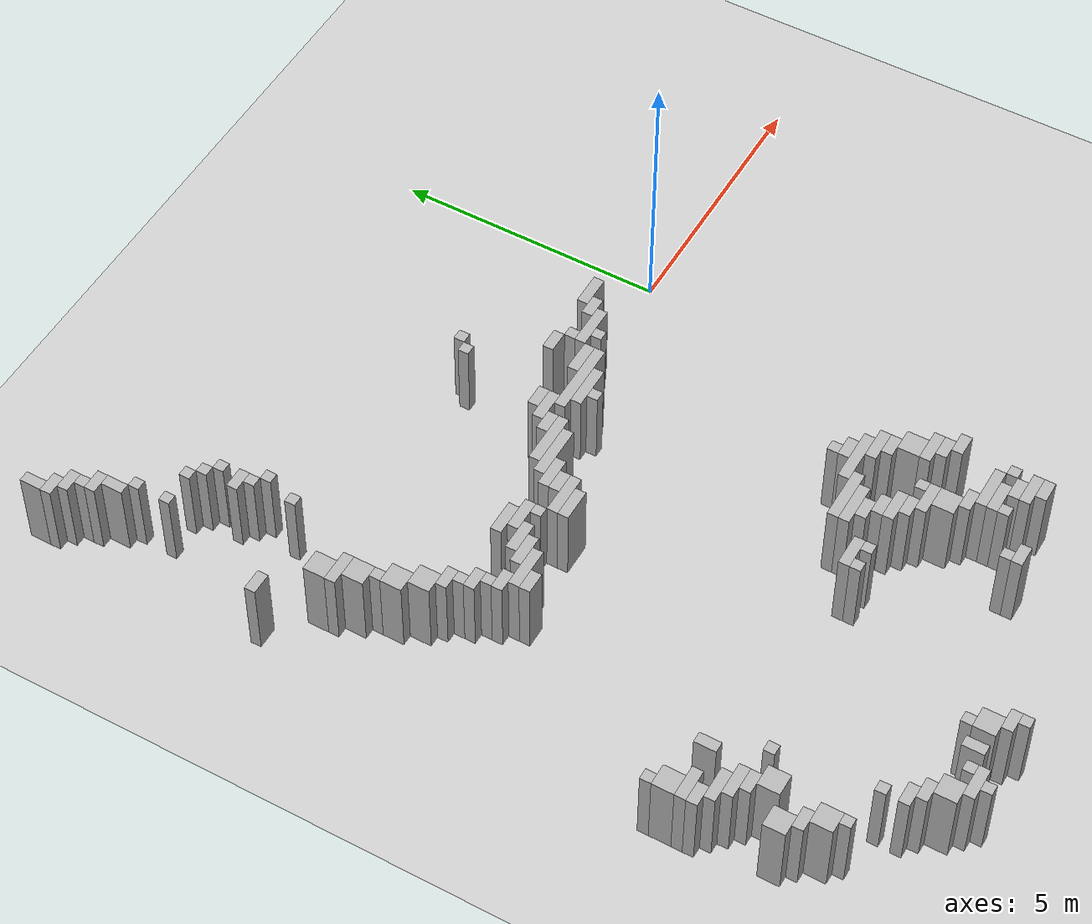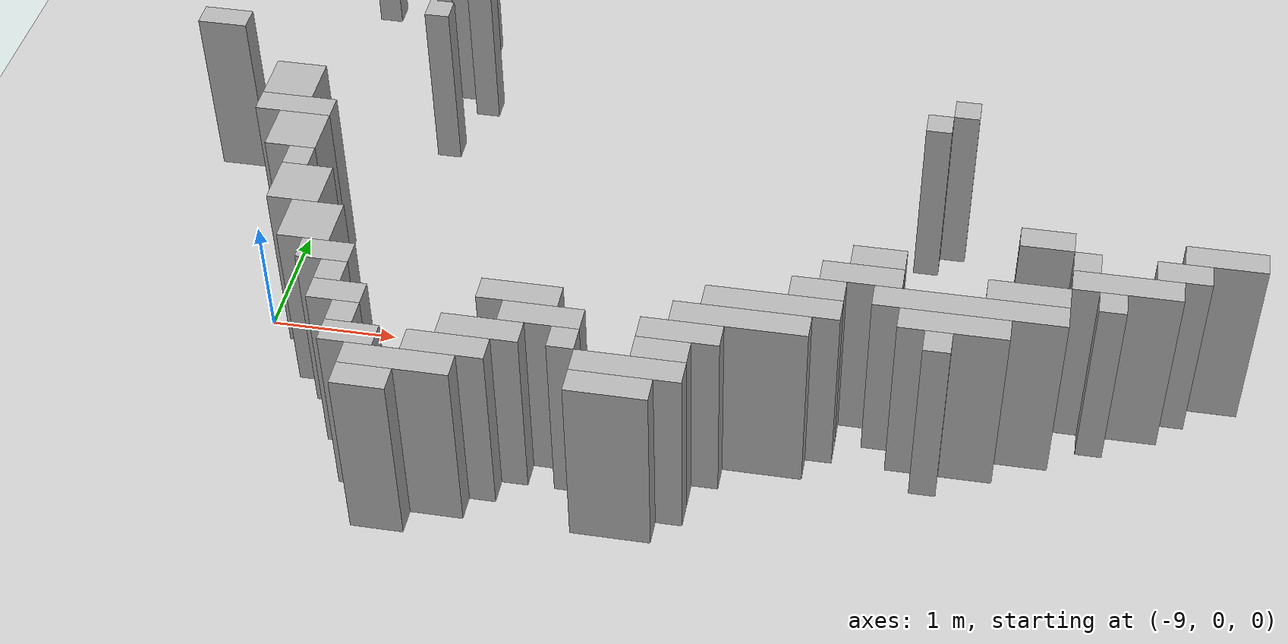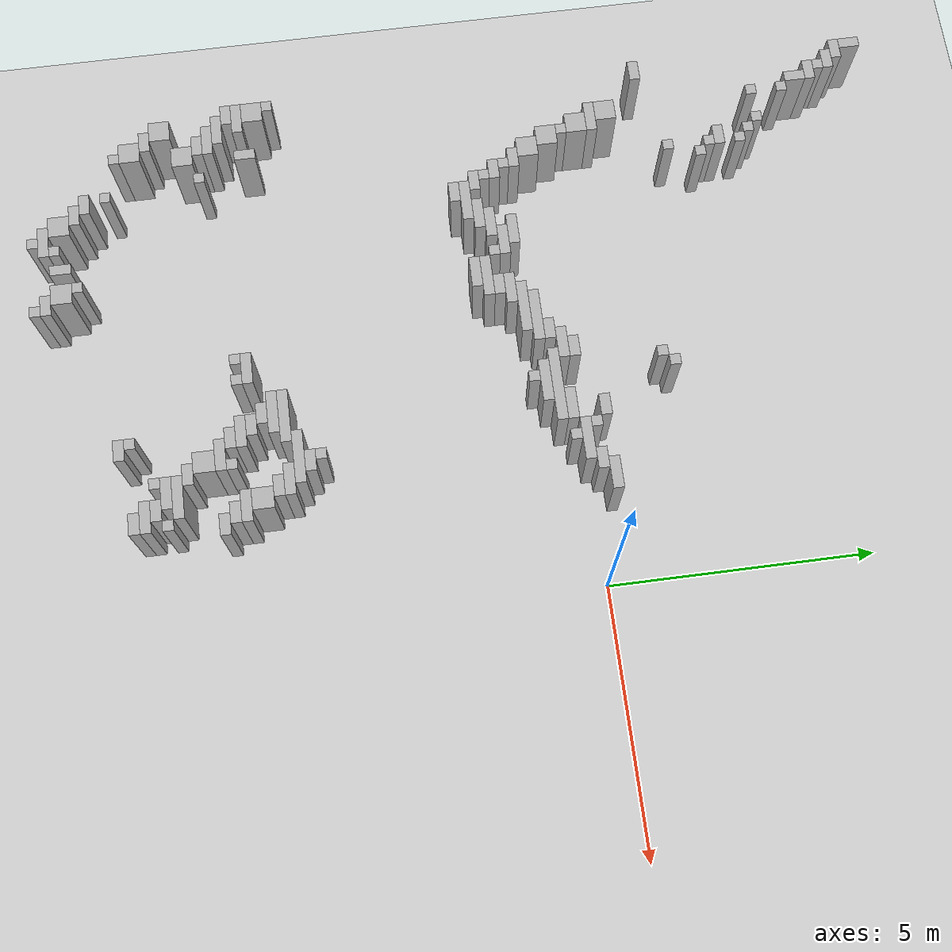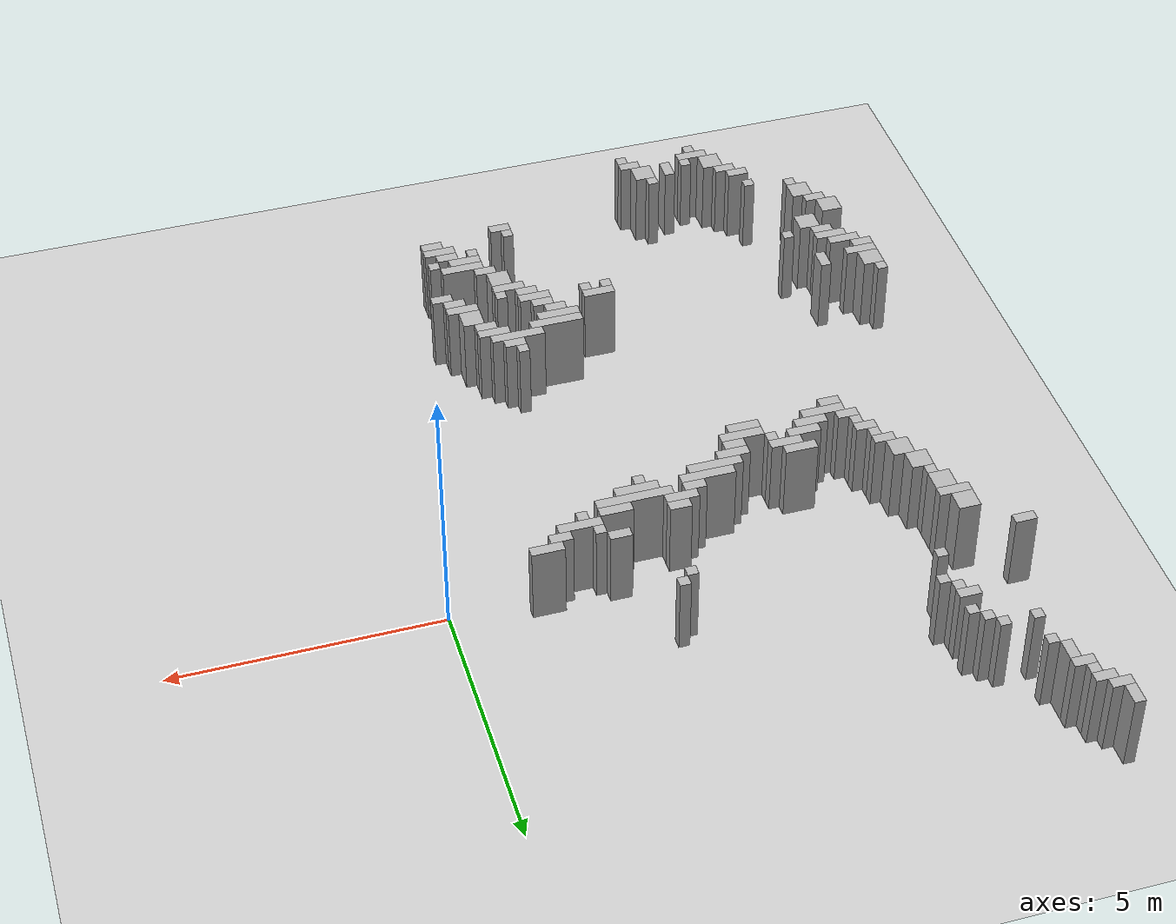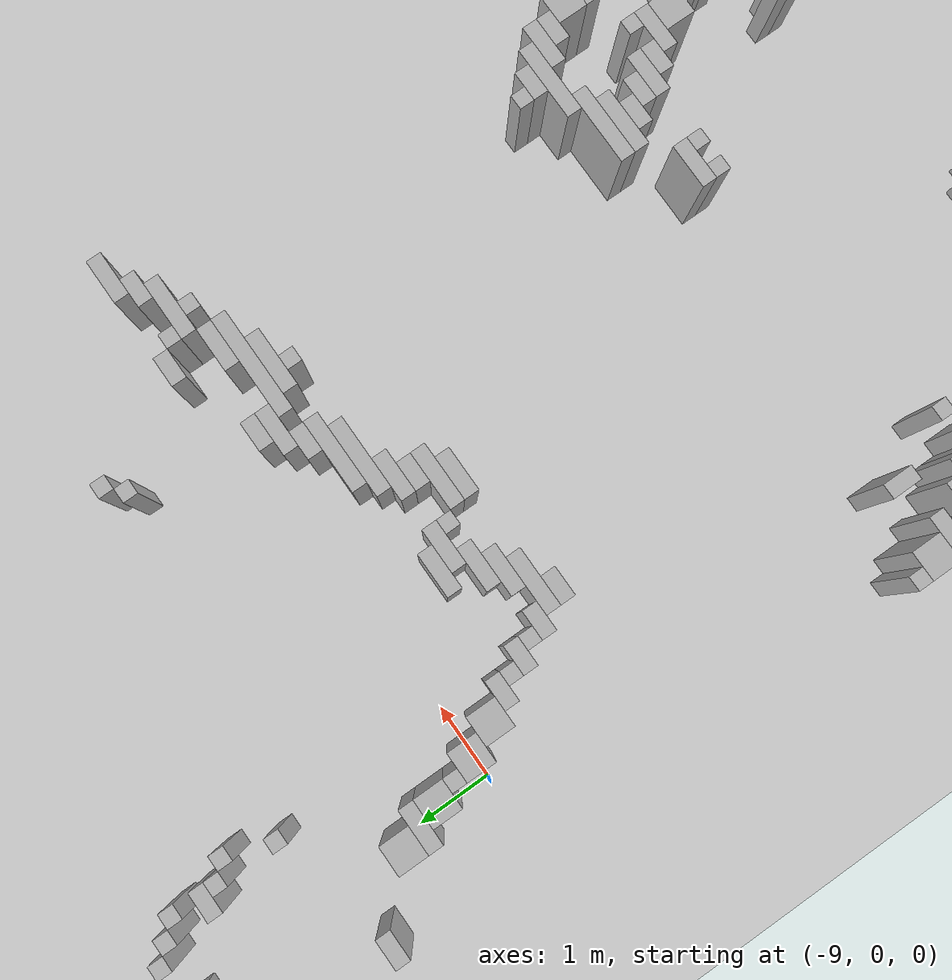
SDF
<sdf version="1.6">
 <world name="real_map">
  <include><uri>model://sun</uri></include>
  <include><uri>model://ground_plane</uri></include>
  <model name="w2">
   <static>true</static>
   <pose>-9.10 4.70 0.8 0 0 0</pose>
   <link name="l">
    <collision name="c"><geometry><box><size>0.20 0.20 1.5</size></box></geometry></collision>
    <visual name="v">
     <geometry><box><size>0.20 0.20 1.5</size></box></geometry>
     <material><ambient>0.7 0.7 0.7 1</ambient></material>
    </visual>
   </link>
  </model>
  <model name="w3">
   <static>true</static>
   <pose>-8.10 3.70 0.8 0 0 0</pose>
   <link name="l">
    <collision name="c"><geometry><box><size>0.20 0.20 1.5</size></box></geometry></collision>
    <visual name="v">
     <geometry><box><size>0.20 0.20 1.5</size></box></geometry>
     <material><ambient>0.7 0.7 0.7 1</ambient></material>
    </visual>
   </link>
  </model>
  <model name="w5">
   <static>true</static>
   <pose>-8.10 3.10 0.8 0 0 0</pose>
   <link name="l">
    <collision name="c"><geometry><box><size>0.20 0.20 1.5</size></box></geometry></collision>
    <visual name="v">
     <geometry><box><size>0.20 0.20 1.5</size></box></geometry>
     <material><ambient>0.7 0.7 0.7 1</ambient></material>
    </visual>
   </link>
  </model>
  <model name="w7">
   <static>true</static>
   <pose>-9.80 5.90 0.8 0 0 0</pose>
   <link name="l">
    <collision name="c"><geometry><box><size>0.40 0.20 1.5</size></box></geometry></collision>
    <visual name="v">
     <geometry><box><size>0.40 0.20 1.5</size></box></geometry>
     <material><ambient>0.7 0.7 0.7 1</ambient></material>
    </visual>
   </link>
  </model>
  <model name="w14">
   <static>true</static>
   <pose>-8.20 3.30 0.8 0 0 0</pose>
   <link name="l">
    <collision name="c"><geometry><box><size>0.40 0.20 1.5</size></box></geometry></collision>
    <visual name="v">
     <geometry><box><size>0.40 0.20 1.5</size></box></geometry>
     <material><ambient>0.7 0.7 0.7 1</ambient></material>
    </visual>
   </link>
  </model>
  <model name="w16">
   <static>true</static>
   <pose>-8.10 2.30 0.8 0 0 0</pose>
   <link name="l">
    <collision name="c"><geometry><box><size>0.20 0.20 1.5</size></box></geometry></collision>
    <visual name="v">
     <geometry><box><size>0.20 0.20 1.5</size></box></geometry>
     <material><ambient>0.7 0.7 0.7 1</ambient></material>
    </visual>
   </link>
  </model>
  <model name="w17">
   <static>true</static>
   <pose>-3.70 1.70 0.8 0 0 0</pose>
   <link name="l">
    <collision name="c"><geometry><box><size>0.20 0.20 1.5</size></box></geometry></collision>
    <visual name="v">
     <geometry><box><size>0.20 0.20 1.5</size></box></geometry>
     <material><ambient>0.7 0.7 0.7 1</ambient></material>
    </visual>
   </link>
  </model>
  <model name="w20">
   <static>true</static>
   <pose>-7.90 2.90 0.8 0 0 0</pose>
   <link name="l">
    <collision name="c"><geometry><box><size>0.20 0.20 1.5</size></box></geometry></collision>
    <visual name="v">
     <geometry><box><size>0.20 0.20 1.5</size></box></geometry>
     <material><ambient>0.7 0.7 0.7 1</ambient></material>
    </visual>
   </link>
  </model>
  <model name="w50">
   <static>true</static>
   <pose>-2.70 0.10 0.8 0 0 0</pose>
   <link name="l">
    <collision name="c"><geometry><box><size>0.20 0.20 1.5</size></box></geometry></collision>
    <visual name="v">
     <geometry><box><size>0.20 0.20 1.5</size></box></geometry>
     <material><ambient>0.7 0.7 0.7 1</ambient></material>
    </visual>
   </link>
  </model>
  <model name="w57">
   <static>true</static>
   <pose>-9.90 6.20 0.8 0 0 0</pose>
   <link name="l">
    <collision name="c"><geometry><box><size>0.20 0.40 1.5</size></box></geometry></collision>
    <visual name="v">
     <geometry><box><size>0.20 0.40 1.5</size></box></geometry>
     <material><ambient>0.7 0.7 0.7 1</ambient></material>
    </visual>
   </link>
  </model>
  <model name="w60">
   <static>true</static>
   <pose>-9.80 1.90 0.8 0 0 0</pose>
   <link name="l">
    <collision name="c"><geometry><box><size>0.40 0.20 1.5</size></box></geometry></collision>
    <visual name="v">
     <geometry><box><size>0.40 0.20 1.5</size></box></geometry>
     <material><ambient>0.7 0.7 0.7 1</ambient></material>
    </visual>
   </link>
  </model>
  <model name="w62">
   <static>true</static>
   <pose>-3.60 -0.70 0.8 0 0 0</pose>
   <link name="l">
    <collision name="c"><geometry><box><size>0.80 0.20 1.5</size></box></geometry></collision>
    <visual name="v">
     <geometry><box><size>0.80 0.20 1.5</size></box></geometry>
     <material><ambient>0.7 0.7 0.7 1</ambient></material>
    </visual>
   </link>
  </model>
  <model name="w63">
   <static>true</static>
   <pose>-2.00 0.10 0.8 0 0 0</pose>
   <link name="l">
    <collision name="c"><geometry><box><size>0.40 0.20 1.5</size></box></geometry></collision>
    <visual name="v">
     <geometry><box><size>0.40 0.20 1.5</size></box></geometry>
     <material><ambient>0.7 0.7 0.7 1</ambient></material>
    </visual>
   </link>
  </model>
  <model name="w66">
   <static>true</static>
   <pose>-9.80 -5.60 0.8 0 0 0</pose>
   <link name="l">
    <collision name="c"><geometry><box><size>0.40 0.40 1.5</size></box></geometry></collision>
    <visual name="v">
     <geometry><box><size>0.40 0.40 1.5</size></box></geometry>
     <material><ambient>0.7 0.7 0.7 1</ambient></material>
    </visual>
   </link>
  </model>
  <model name="w69">
   <static>true</static>
   <pose>-2.70 -4.90 0.8 0 0 0</pose>
   <link name="l">
    <collision name="c"><geometry><box><size>0.20 0.20 1.5</size></box></geometry></collision>
    <visual name="v">
     <geometry><box><size>0.20 0.20 1.5</size></box></geometry>
     <material><ambient>0.7 0.7 0.7 1</ambient></material>
    </visual>
   </link>
  </model>
  <model name="w72">
   <static>true</static>
   <pose>-8.50 4.10 0.8 0 0 0</pose>
   <link name="l">
    <collision name="c"><geometry><box><size>0.20 0.20 1.5</size></box></geometry></collision>
    <visual name="v">
     <geometry><box><size>0.20 0.20 1.5</size></box></geometry>
     <material><ambient>0.7 0.7 0.7 1</ambient></material>
    </visual>
   </link>
  </model>
  <model name="w74">
   <static>true</static>
   <pose>-9.00 1.20 0.8 0 0 0</pose>
   <link name="l">
    <collision name="c"><geometry><box><size>0.40 0.40 1.5</size></box></geometry></collision>
    <visual name="v">
     <geometry><box><size>0.40 0.40 1.5</size></box></geometry>
     <material><ambient>0.7 0.7 0.7 1</ambient></material>
    </visual>
   </link>
  </model>
  <model name="w77">
   <static>true</static>
   <pose>-9.60 5.70 0.8 0 0 0</pose>
   <link name="l">
    <collision name="c"><geometry><box><size>0.40 0.20 1.5</size></box></geometry></collision>
    <visual name="v">
     <geometry><box><size>0.40 0.20 1.5</size></box></geometry>
     <material><ambient>0.7 0.7 0.7 1</ambient></material>
    </visual>
   </link>
  </model>
  <model name="w78">
   <static>true</static>
   <pose>-2.60 -5.10 0.8 0 0 0</pose>
   <link name="l">
    <collision name="c"><geometry><box><size>0.40 0.20 1.5</size></box></geometry></collision>
    <visual name="v">
     <geometry><box><size>0.40 0.20 1.5</size></box></geometry>
     <material><ambient>0.7 0.7 0.7 1</ambient></material>
    </visual>
   </link>
  </model>
  <model name="w82">
   <static>true</static>
   <pose>-9.40 5.30 0.8 0 0 0</pose>
   <link name="l">
    <collision name="c"><geometry><box><size>0.40 0.20 1.5</size></box></geometry></collision>
    <visual name="v">
     <geometry><box><size>0.40 0.20 1.5</size></box></geometry>
     <material><ambient>0.7 0.7 0.7 1</ambient></material>
    </visual>
   </link>
  </model>
  <model name="w83">
   <static>true</static>
   <pose>-2.30 -5.50 0.8 0 0 0</pose>
   <link name="l">
    <collision name="c"><geometry><box><size>0.60 0.20 1.5</size></box></geometry></collision>
    <visual name="v">
     <geometry><box><size>0.60 0.20 1.5</size></box></geometry>
     <material><ambient>0.7 0.7 0.7 1</ambient></material>
    </visual>
   </link>
  </model>
  <model name="w84">
   <static>true</static>
   <pose>-9.20 -6.70 0.8 0 0 0</pose>
   <link name="l">
    <collision name="c"><geometry><box><size>0.40 0.20 1.5</size></box></geometry></collision>
    <visual name="v">
     <geometry><box><size>0.40 0.20 1.5</size></box></geometry>
     <material><ambient>0.7 0.7 0.7 1</ambient></material>
    </visual>
   </link>
  </model>
  <model name="w85">
   <static>true</static>
   <pose>-2.50 -0.30 0.8 0 0 0</pose>
   <link name="l">
    <collision name="c"><geometry><box><size>0.20 0.20 1.5</size></box></geometry></collision>
    <visual name="v">
     <geometry><box><size>0.20 0.20 1.5</size></box></geometry>
     <material><ambient>0.7 0.7 0.7 1</ambient></material>
    </visual>
   </link>
  </model>
  <model name="w86">
   <static>true</static>
   <pose>-2.00 -6.00 0.8 0 0 0</pose>
   <link name="l">
    <collision name="c"><geometry><box><size>0.40 0.40 1.5</size></box></geometry></collision>
    <visual name="v">
     <geometry><box><size>0.40 0.40 1.5</size></box></geometry>
     <material><ambient>0.7 0.7 0.7 1</ambient></material>
    </visual>
   </link>
  </model>
  <model name="w88">
   <static>true</static>
   <pose>-1.90 -6.30 0.8 0 0 0</pose>
   <link name="l">
    <collision name="c"><geometry><box><size>0.60 0.20 1.5</size></box></geometry></collision>
    <visual name="v">
     <geometry><box><size>0.60 0.20 1.5</size></box></geometry>
     <material><ambient>0.7 0.7 0.7 1</ambient></material>
    </visual>
   </link>
  </model>
  <model name="w91">
   <static>true</static>
   <pose>-9.10 4.10 0.8 0 0 0</pose>
   <link name="l">
    <collision name="c"><geometry><box><size>0.20 0.20 1.5</size></box></geometry></collision>
    <visual name="v">
     <geometry><box><size>0.20 0.20 1.5</size></box></geometry>
     <material><ambient>0.7 0.7 0.7 1</ambient></material>
    </visual>
   </link>
  </model>
  <model name="w92">
   <static>true</static>
   <pose>-1.80 -6.50 0.8 0 0 0</pose>
   <link name="l">
    <collision name="c"><geometry><box><size>0.40 0.20 1.5</size></box></geometry></collision>
    <visual name="v">
     <geometry><box><size>0.40 0.20 1.5</size></box></geometry>
     <material><ambient>0.7 0.7 0.7 1</ambient></material>
    </visual>
   </link>
  </model>
  <model name="w95">
   <static>true</static>
   <pose>-8.30 3.90 0.8 0 0 0</pose>
   <link name="l">
    <collision name="c"><geometry><box><size>0.20 0.20 1.5</size></box></geometry></collision>
    <visual name="v">
     <geometry><box><size>0.20 0.20 1.5</size></box></geometry>
     <material><ambient>0.7 0.7 0.7 1</ambient></material>
    </visual>
   </link>
  </model>
  <model name="w96">
   <static>true</static>
   <pose>-3.20 -6.50 0.8 0 0 0</pose>
   <link name="l">
    <collision name="c"><geometry><box><size>0.40 0.20 1.5</size></box></geometry></collision>
    <visual name="v">
     <geometry><box><size>0.40 0.20 1.5</size></box></geometry>
     <material><ambient>0.7 0.7 0.7 1</ambient></material>
    </visual>
   </link>
  </model>
  <model name="w100">
   <static>true</static>
   <pose>-8.20 -0.70 0.8 0 0 0</pose>
   <link name="l">
    <collision name="c"><geometry><box><size>0.40 0.20 1.5</size></box></geometry></collision>
    <visual name="v">
     <geometry><box><size>0.40 0.20 1.5</size></box></geometry>
     <material><ambient>0.7 0.7 0.7 1</ambient></material>
    </visual>
   </link>
  </model>
  <model name="w103">
   <static>true</static>
   <pose>-8.00 -1.10 0.8 0 0 0</pose>
   <link name="l">
    <collision name="c"><geometry><box><size>0.40 0.20 1.5</size></box></geometry></collision>
    <visual name="v">
     <geometry><box><size>0.40 0.20 1.5</size></box></geometry>
     <material><ambient>0.7 0.7 0.7 1</ambient></material>
    </visual>
   </link>
  </model>
  <model name="w105">
   <static>true</static>
   <pose>-7.80 -1.50 0.8 0 0 0</pose>
   <link name="l">
    <collision name="c"><geometry><box><size>0.40 0.20 1.5</size></box></geometry></collision>
    <visual name="v">
     <geometry><box><size>0.40 0.20 1.5</size></box></geometry>
     <material><ambient>0.7 0.7 0.7 1</ambient></material>
    </visual>
   </link>
  </model>
  <model name="w129">
   <static>true</static>
   <pose>-9.90 -5.30 0.8 0 0 0</pose>
   <link name="l">
    <collision name="c"><geometry><box><size>0.20 0.20 1.5</size></box></geometry></collision>
    <visual name="v">
     <geometry><box><size>0.20 0.20 1.5</size></box></geometry>
     <material><ambient>0.7 0.7 0.7 1</ambient></material>
    </visual>
   </link>
  </model>
  <model name="w132">
   <static>true</static>
   <pose>-9.80 -6.10 0.8 0 0 0</pose>
   <link name="l">
    <collision name="c"><geometry><box><size>0.40 0.20 1.5</size></box></geometry></collision>
    <visual name="v">
     <geometry><box><size>0.40 0.20 1.5</size></box></geometry>
     <material><ambient>0.7 0.7 0.7 1</ambient></material>
    </visual>
   </link>
  </model>
  <model name="w134">
   <static>true</static>
   <pose>-9.60 -7.40 0.8 0 0 0</pose>
   <link name="l">
    <collision name="c"><geometry><box><size>0.40 0.40 1.5</size></box></geometry></collision>
    <visual name="v">
     <geometry><box><size>0.40 0.40 1.5</size></box></geometry>
     <material><ambient>0.7 0.7 0.7 1</ambient></material>
    </visual>
   </link>
  </model>
  <model name="w136">
   <static>true</static>
   <pose>-9.50 5.50 0.8 0 0 0</pose>
   <link name="l">
    <collision name="c"><geometry><box><size>0.20 0.20 1.5</size></box></geometry></collision>
    <visual name="v">
     <geometry><box><size>0.20 0.20 1.5</size></box></geometry>
     <material><ambient>0.7 0.7 0.7 1</ambient></material>
    </visual>
   </link>
  </model>
  <model name="w138">
   <static>true</static>
   <pose>-9.40 -7.70 0.8 0 0 0</pose>
   <link name="l">
    <collision name="c"><geometry><box><size>0.40 0.20 1.5</size></box></geometry></collision>
    <visual name="v">
     <geometry><box><size>0.40 0.20 1.5</size></box></geometry>
     <material><ambient>0.7 0.7 0.7 1</ambient></material>
    </visual>
   </link>
  </model>
  <model name="w140">
   <static>true</static>
   <pose>-9.30 5.00 0.8 0 0 0</pose>
   <link name="l">
    <collision name="c"><geometry><box><size>0.20 0.40 1.5</size></box></geometry></collision>
    <visual name="v">
     <geometry><box><size>0.20 0.40 1.5</size></box></geometry>
     <material><ambient>0.7 0.7 0.7 1</ambient></material>
    </visual>
   </link>
  </model>
  <model name="w143">
   <static>true</static>
   <pose>-9.10 -8.30 0.8 0 0 0</pose>
   <link name="l">
    <collision name="c"><geometry><box><size>0.20 0.20 1.5</size></box></geometry></collision>
    <visual name="v">
     <geometry><box><size>0.20 0.20 1.5</size></box></geometry>
     <material><ambient>0.7 0.7 0.7 1</ambient></material>
    </visual>
   </link>
  </model>
  <model name="w151">
   <static>true</static>
   <pose>-8.50 -6.70 0.8 0 0 0</pose>
   <link name="l">
    <collision name="c"><geometry><box><size>0.20 0.20 1.5</size></box></geometry></collision>
    <visual name="v">
     <geometry><box><size>0.20 0.20 1.5</size></box></geometry>
     <material><ambient>0.7 0.7 0.7 1</ambient></material>
    </visual>
   </link>
  </model>
  <model name="w154">
   <static>true</static>
   <pose>-8.30 -8.50 0.8 0 0 0</pose>
   <link name="l">
    <collision name="c"><geometry><box><size>0.20 0.20 1.5</size></box></geometry></collision>
    <visual name="v">
     <geometry><box><size>0.20 0.20 1.5</size></box></geometry>
     <material><ambient>0.7 0.7 0.7 1</ambient></material>
    </visual>
   </link>
  </model>
  <model name="w157">
   <static>true</static>
   <pose>-8.10 -0.90 0.8 0 0 0</pose>
   <link name="l">
    <collision name="c"><geometry><box><size>0.20 0.20 1.5</size></box></geometry></collision>
    <visual name="v">
     <geometry><box><size>0.20 0.20 1.5</size></box></geometry>
     <material><ambient>0.7 0.7 0.7 1</ambient></material>
    </visual>
   </link>
  </model>
  <model name="w159">
   <static>true</static>
   <pose>-8.20 -8.90 0.8 0 0 0</pose>
   <link name="l">
    <collision name="c"><geometry><box><size>0.40 0.20 1.5</size></box></geometry></collision>
    <visual name="v">
     <geometry><box><size>0.40 0.20 1.5</size></box></geometry>
     <material><ambient>0.7 0.7 0.7 1</ambient></material>
    </visual>
   </link>
  </model>
  <model name="w164">
   <static>true</static>
   <pose>-7.90 -1.30 0.8 0 0 0</pose>
   <link name="l">
    <collision name="c"><geometry><box><size>0.20 0.20 1.5</size></box></geometry></collision>
    <visual name="v">
     <geometry><box><size>0.20 0.20 1.5</size></box></geometry>
     <material><ambient>0.7 0.7 0.7 1</ambient></material>
    </visual>
   </link>
  </model>
  <model name="w176">
   <static>true</static>
   <pose>-3.70 -0.90 0.8 0 0 0</pose>
   <link name="l">
    <collision name="c"><geometry><box><size>0.20 0.20 1.5</size></box></geometry></collision>
    <visual name="v">
     <geometry><box><size>0.20 0.20 1.5</size></box></geometry>
     <material><ambient>0.7 0.7 0.7 1</ambient></material>
    </visual>
   </link>
  </model>
  <model name="w178">
   <static>true</static>
   <pose>-3.90 1.50 0.8 0 0 0</pose>
   <link name="l">
    <collision name="c"><geometry><box><size>0.20 0.20 1.5</size></box></geometry></collision>
    <visual name="v">
     <geometry><box><size>0.20 0.20 1.5</size></box></geometry>
     <material><ambient>0.7 0.7 0.7 1</ambient></material>
    </visual>
   </link>
  </model>
  <model name="w180">
   <static>true</static>
   <pose>-9.00 -7.00 0.8 0 0 0</pose>
   <link name="l">
    <collision name="c"><geometry><box><size>0.40 0.40 1.5</size></box></geometry></collision>
    <visual name="v">
     <geometry><box><size>0.40 0.40 1.5</size></box></geometry>
     <material><ambient>0.7 0.7 0.7 1</ambient></material>
    </visual>
   </link>
  </model>
  <model name="w184">
   <static>true</static>
   <pose>-8.90 0.90 0.8 0 0 0</pose>
   <link name="l">
    <collision name="c"><geometry><box><size>0.60 0.20 1.5</size></box></geometry></collision>
    <visual name="v">
     <geometry><box><size>0.60 0.20 1.5</size></box></geometry>
     <material><ambient>0.7 0.7 0.7 1</ambient></material>
    </visual>
   </link>
  </model>
  <model name="w186">
   <static>true</static>
   <pose>-8.80 0.60 0.8 0 0 0</pose>
   <link name="l">
    <collision name="c"><geometry><box><size>0.40 0.40 1.5</size></box></geometry></collision>
    <visual name="v">
     <geometry><box><size>0.40 0.40 1.5</size></box></geometry>
     <material><ambient>0.7 0.7 0.7 1</ambient></material>
    </visual>
   </link>
  </model>
  <model name="w191">
   <static>true</static>
   <pose>-8.70 0.30 0.8 0 0 0</pose>
   <link name="l">
    <collision name="c"><geometry><box><size>0.20 0.20 1.5</size></box></geometry></collision>
    <visual name="v">
     <geometry><box><size>0.20 0.20 1.5</size></box></geometry>
     <material><ambient>0.7 0.7 0.7 1</ambient></material>
    </visual>
   </link>
  </model>
  <model name="w192">
   <static>true</static>
   <pose>-3.00 0.30 0.8 0 0 0</pose>
   <link name="l">
    <collision name="c"><geometry><box><size>0.40 0.20 1.5</size></box></geometry></collision>
    <visual name="v">
     <geometry><box><size>0.40 0.20 1.5</size></box></geometry>
     <material><ambient>0.7 0.7 0.7 1</ambient></material>
    </visual>
   </link>
  </model>
  <model name="w193">
   <static>true</static>
   <pose>-1.70 0.30 0.8 0 0 0</pose>
   <link name="l">
    <collision name="c"><geometry><box><size>0.60 0.20 1.5</size></box></geometry></collision>
    <visual name="v">
     <geometry><box><size>0.60 0.20 1.5</size></box></geometry>
     <material><ambient>0.7 0.7 0.7 1</ambient></material>
    </visual>
   </link>
  </model>
  <model name="w195">
   <static>true</static>
   <pose>-8.60 0.00 0.8 0 0 0</pose>
   <link name="l">
    <collision name="c"><geometry><box><size>0.40 0.40 1.5</size></box></geometry></collision>
    <visual name="v">
     <geometry><box><size>0.40 0.40 1.5</size></box></geometry>
     <material><ambient>0.7 0.7 0.7 1</ambient></material>
    </visual>
   </link>
  </model>
  <model name="w196">
   <static>true</static>
   <pose>-2.70 -6.50 0.8 0 0 0</pose>
   <link name="l">
    <collision name="c"><geometry><box><size>0.20 0.20 1.5</size></box></geometry></collision>
    <visual name="v">
     <geometry><box><size>0.20 0.20 1.5</size></box></geometry>
     <material><ambient>0.7 0.7 0.7 1</ambient></material>
    </visual>
   </link>
  </model>
  <model name="w197">
   <static>true</static>
   <pose>-2.00 -7.90 0.8 0 0 0</pose>
   <link name="l">
    <collision name="c"><geometry><box><size>0.40 0.20 1.5</size></box></geometry></collision>
    <visual name="v">
     <geometry><box><size>0.40 0.20 1.5</size></box></geometry>
     <material><ambient>0.7 0.7 0.7 1</ambient></material>
    </visual>
   </link>
  </model>
  <model name="w198">
   <static>true</static>
   <pose>-4.20 -0.10 0.8 0 0 0</pose>
   <link name="l">
    <collision name="c"><geometry><box><size>0.40 0.20 1.5</size></box></geometry></collision>
    <visual name="v">
     <geometry><box><size>0.40 0.20 1.5</size></box></geometry>
     <material><ambient>0.7 0.7 0.7 1</ambient></material>
    </visual>
   </link>
  </model>
  <model name="w199">
   <static>true</static>
   <pose>-2.40 -0.10 0.8 0 0 0</pose>
   <link name="l">
    <collision name="c"><geometry><box><size>0.80 0.20 1.5</size></box></geometry></collision>
    <visual name="v">
     <geometry><box><size>0.80 0.20 1.5</size></box></geometry>
     <material><ambient>0.7 0.7 0.7 1</ambient></material>
    </visual>
   </link>
  </model>
  <model name="w201">
   <static>true</static>
   <pose>-8.40 -0.40 0.8 0 0 0</pose>
   <link name="l">
    <collision name="c"><geometry><box><size>0.40 0.40 1.5</size></box></geometry></collision>
    <visual name="v">
     <geometry><box><size>0.40 0.40 1.5</size></box></geometry>
     <material><ambient>0.7 0.7 0.7 1</ambient></material>
    </visual>
   </link>
  </model>
  <model name="w202">
   <static>true</static>
   <pose>-4.30 -0.30 0.8 0 0 0</pose>
   <link name="l">
    <collision name="c"><geometry><box><size>0.60 0.20 1.5</size></box></geometry></collision>
    <visual name="v">
     <geometry><box><size>0.60 0.20 1.5</size></box></geometry>
     <material><ambient>0.7 0.7 0.7 1</ambient></material>
    </visual>
   </link>
  </model>
  <model name="w203">
   <static>true</static>
   <pose>-3.10 -0.30 0.8 0 0 0</pose>
   <link name="l">
    <collision name="c"><geometry><box><size>0.60 0.20 1.5</size></box></geometry></collision>
    <visual name="v">
     <geometry><box><size>0.60 0.20 1.5</size></box></geometry>
     <material><ambient>0.7 0.7 0.7 1</ambient></material>
    </visual>
   </link>
  </model>
  <model name="w204">
   <static>true</static>
   <pose>-2.50 -7.90 0.8 0 0 0</pose>
   <link name="l">
    <collision name="c"><geometry><box><size>0.20 0.20 1.5</size></box></geometry></collision>
    <visual name="v">
     <geometry><box><size>0.20 0.20 1.5</size></box></geometry>
     <material><ambient>0.7 0.7 0.7 1</ambient></material>
    </visual>
   </link>
  </model>
  <model name="w207">
   <static>true</static>
   <pose>-4.60 -0.50 0.8 0 0 0</pose>
   <link name="l">
    <collision name="c"><geometry><box><size>0.40 0.20 1.5</size></box></geometry></collision>
    <visual name="v">
     <geometry><box><size>0.40 0.20 1.5</size></box></geometry>
     <material><ambient>0.7 0.7 0.7 1</ambient></material>
    </visual>
   </link>
  </model>
  <model name="w208">
   <static>true</static>
   <pose>-3.50 -0.50 0.8 0 0 0</pose>
   <link name="l">
    <collision name="c"><geometry><box><size>1.40 0.20 1.5</size></box></geometry></collision>
    <visual name="v">
     <geometry><box><size>1.40 0.20 1.5</size></box></geometry>
     <material><ambient>0.7 0.7 0.7 1</ambient></material>
    </visual>
   </link>
  </model>
  <model name="w211">
   <static>true</static>
   <pose>-4.90 -0.70 0.8 0 0 0</pose>
   <link name="l">
    <collision name="c"><geometry><box><size>1.00 0.20 1.5</size></box></geometry></collision>
    <visual name="v">
     <geometry><box><size>1.00 0.20 1.5</size></box></geometry>
     <material><ambient>0.7 0.7 0.7 1</ambient></material>
    </visual>
   </link>
  </model>
  <model name="w212">
   <static>true</static>
   <pose>-3.60 -5.70 0.8 0 0 0</pose>
   <link name="l">
    <collision name="c"><geometry><box><size>0.80 0.20 1.5</size></box></geometry></collision>
    <visual name="v">
     <geometry><box><size>0.80 0.20 1.5</size></box></geometry>
     <material><ambient>0.7 0.7 0.7 1</ambient></material>
    </visual>
   </link>
  </model>
  <model name="w214">
   <static>true</static>
   <pose>-6.70 -0.90 0.8 0 0 0</pose>
   <link name="l">
    <collision name="c"><geometry><box><size>0.60 0.20 1.5</size></box></geometry></collision>
    <visual name="v">
     <geometry><box><size>0.60 0.20 1.5</size></box></geometry>
     <material><ambient>0.7 0.7 0.7 1</ambient></material>
    </visual>
   </link>
  </model>
  <model name="w215">
   <static>true</static>
   <pose>-5.10 -0.90 0.8 0 0 0</pose>
   <link name="l">
    <collision name="c"><geometry><box><size>1.00 0.20 1.5</size></box></geometry></collision>
    <visual name="v">
     <geometry><box><size>1.00 0.20 1.5</size></box></geometry>
     <material><ambient>0.7 0.7 0.7 1</ambient></material>
    </visual>
   </link>
  </model>
  <model name="w217">
   <static>true</static>
   <pose>-8.00 -9.10 0.8 0 0 0</pose>
   <link name="l">
    <collision name="c"><geometry><box><size>0.40 0.20 1.5</size></box></geometry></collision>
    <visual name="v">
     <geometry><box><size>0.40 0.20 1.5</size></box></geometry>
     <material><ambient>0.7 0.7 0.7 1</ambient></material>
    </visual>
   </link>
  </model>
  <model name="w218">
   <static>true</static>
   <pose>-6.50 -1.10 0.8 0 0 0</pose>
   <link name="l">
    <collision name="c"><geometry><box><size>0.60 0.20 1.5</size></box></geometry></collision>
    <visual name="v">
     <geometry><box><size>0.60 0.20 1.5</size></box></geometry>
     <material><ambient>0.7 0.7 0.7 1</ambient></material>
    </visual>
   </link>
  </model>
  <model name="w219">
   <static>true</static>
   <pose>-5.50 -1.10 0.8 0 0 0</pose>
   <link name="l">
    <collision name="c"><geometry><box><size>0.60 0.20 1.5</size></box></geometry></collision>
    <visual name="v">
     <geometry><box><size>0.60 0.20 1.5</size></box></geometry>
     <material><ambient>0.7 0.7 0.7 1</ambient></material>
    </visual>
   </link>
  </model>
  <model name="w222">
   <static>true</static>
   <pose>-6.90 -1.30 0.8 0 0 0</pose>
   <link name="l">
    <collision name="c"><geometry><box><size>0.60 0.20 1.5</size></box></geometry></collision>
    <visual name="v">
     <geometry><box><size>0.60 0.20 1.5</size></box></geometry>
     <material><ambient>0.7 0.7 0.7 1</ambient></material>
    </visual>
   </link>
  </model>
  <model name="w223">
   <static>true</static>
   <pose>-6.30 -1.30 0.8 0 0 0</pose>
   <link name="l">
    <collision name="c"><geometry><box><size>0.20 0.20 1.5</size></box></geometry></collision>
    <visual name="v">
     <geometry><box><size>0.20 0.20 1.5</size></box></geometry>
     <material><ambient>0.7 0.7 0.7 1</ambient></material>
    </visual>
   </link>
  </model>
  <model name="w224">
   <static>true</static>
   <pose>-5.60 -1.30 0.8 0 0 0</pose>
   <link name="l">
    <collision name="c"><geometry><box><size>0.40 0.20 1.5</size></box></geometry></collision>
    <visual name="v">
     <geometry><box><size>0.40 0.20 1.5</size></box></geometry>
     <material><ambient>0.7 0.7 0.7 1</ambient></material>
    </visual>
   </link>
  </model>
  <model name="w226">
   <static>true</static>
   <pose>-7.80 -9.40 0.8 0 0 0</pose>
   <link name="l">
    <collision name="c"><geometry><box><size>0.40 0.40 1.5</size></box></geometry></collision>
    <visual name="v">
     <geometry><box><size>0.40 0.40 1.5</size></box></geometry>
     <material><ambient>0.7 0.7 0.7 1</ambient></material>
    </visual>
   </link>
  </model>
  <model name="w227">
   <static>true</static>
   <pose>-7.10 -1.50 0.8 0 0 0</pose>
   <link name="l">
    <collision name="c"><geometry><box><size>0.60 0.20 1.5</size></box></geometry></collision>
    <visual name="v">
     <geometry><box><size>0.60 0.20 1.5</size></box></geometry>
     <material><ambient>0.7 0.7 0.7 1</ambient></material>
    </visual>
   </link>
  </model>
  <model name="w228">
   <static>true</static>
   <pose>-5.80 -1.50 0.8 0 0 0</pose>
   <link name="l">
    <collision name="c"><geometry><box><size>0.80 0.20 1.5</size></box></geometry></collision>
    <visual name="v">
     <geometry><box><size>0.80 0.20 1.5</size></box></geometry>
     <material><ambient>0.7 0.7 0.7 1</ambient></material>
    </visual>
   </link>
  </model>
  <model name="w231">
   <static>true</static>
   <pose>-7.40 -1.70 0.8 0 0 0</pose>
   <link name="l">
    <collision name="c"><geometry><box><size>0.80 0.20 1.5</size></box></geometry></collision>
    <visual name="v">
     <geometry><box><size>0.80 0.20 1.5</size></box></geometry>
     <material><ambient>0.7 0.7 0.7 1</ambient></material>
    </visual>
   </link>
  </model>
  <model name="w232">
   <static>true</static>
   <pose>-5.90 -1.70 0.8 0 0 0</pose>
   <link name="l">
    <collision name="c"><geometry><box><size>0.60 0.20 1.5</size></box></geometry></collision>
    <visual name="v">
     <geometry><box><size>0.60 0.20 1.5</size></box></geometry>
     <material><ambient>0.7 0.7 0.7 1</ambient></material>
    </visual>
   </link>
  </model>
  <model name="w236">
   <static>true</static>
   <pose>-7.60 -1.90 0.8 0 0 0</pose>
   <link name="l">
    <collision name="c"><geometry><box><size>0.40 0.20 1.5</size></box></geometry></collision>
    <visual name="v">
     <geometry><box><size>0.40 0.20 1.5</size></box></geometry>
     <material><ambient>0.7 0.7 0.7 1</ambient></material>
    </visual>
   </link>
  </model>
  <model name="w270">
   <static>true</static>
   <pose>-2.60 -7.30 0.8 0 0 0</pose>
   <link name="l">
    <collision name="c"><geometry><box><size>0.40 0.20 1.5</size></box></geometry></collision>
    <visual name="v">
     <geometry><box><size>0.40 0.20 1.5</size></box></geometry>
     <material><ambient>0.7 0.7 0.7 1</ambient></material>
    </visual>
   </link>
  </model>
  <model name="w273">
   <static>true</static>
   <pose>-2.70 -5.30 0.8 0 0 0</pose>
   <link name="l">
    <collision name="c"><geometry><box><size>1.00 0.20 1.5</size></box></geometry></collision>
    <visual name="v">
     <geometry><box><size>1.00 0.20 1.5</size></box></geometry>
     <material><ambient>0.7 0.7 0.7 1</ambient></material>
    </visual>
   </link>
  </model>
  <model name="w277">
   <static>true</static>
   <pose>-3.50 -5.50 0.8 0 0 0</pose>
   <link name="l">
    <collision name="c"><geometry><box><size>1.00 0.20 1.5</size></box></geometry></collision>
    <visual name="v">
     <geometry><box><size>1.00 0.20 1.5</size></box></geometry>
     <material><ambient>0.7 0.7 0.7 1</ambient></material>
    </visual>
   </link>
  </model>
  <model name="w278">
   <static>true</static>
   <pose>-2.30 -7.70 0.8 0 0 0</pose>
   <link name="l">
    <collision name="c"><geometry><box><size>0.60 0.20 1.5</size></box></geometry></collision>
    <visual name="v">
     <geometry><box><size>0.60 0.20 1.5</size></box></geometry>
     <material><ambient>0.7 0.7 0.7 1</ambient></material>
    </visual>
   </link>
  </model>
  <model name="w280">
   <static>true</static>
   <pose>-8.90 -5.80 0.8 0 0 0</pose>
   <link name="l">
    <collision name="c"><geometry><box><size>0.20 0.40 1.5</size></box></geometry></collision>
    <visual name="v">
     <geometry><box><size>0.20 0.40 1.5</size></box></geometry>
     <material><ambient>0.7 0.7 0.7 1</ambient></material>
    </visual>
   </link>
  </model>
  <model name="w281">
   <static>true</static>
   <pose>-2.20 -5.70 0.8 0 0 0</pose>
   <link name="l">
    <collision name="c"><geometry><box><size>0.40 0.20 1.5</size></box></geometry></collision>
    <visual name="v">
     <geometry><box><size>0.40 0.20 1.5</size></box></geometry>
     <material><ambient>0.7 0.7 0.7 1</ambient></material>
    </visual>
   </link>
  </model>
  <model name="w285">
   <static>true</static>
   <pose>-9.70 -5.90 0.8 0 0 0</pose>
   <link name="l">
    <collision name="c"><geometry><box><size>0.60 0.20 1.5</size></box></geometry></collision>
    <visual name="v">
     <geometry><box><size>0.60 0.20 1.5</size></box></geometry>
     <material><ambient>0.7 0.7 0.7 1</ambient></material>
    </visual>
   </link>
  </model>
  <model name="w286">
   <static>true</static>
   <pose>-3.60 -5.90 0.8 0 0 0</pose>
   <link name="l">
    <collision name="c"><geometry><box><size>0.40 0.20 1.5</size></box></geometry></collision>
    <visual name="v">
     <geometry><box><size>0.40 0.20 1.5</size></box></geometry>
     <material><ambient>0.7 0.7 0.7 1</ambient></material>
    </visual>
   </link>
  </model>
  <model name="w288">
   <static>true</static>
   <pose>-4.50 -6.10 0.8 0 0 0</pose>
   <link name="l">
    <collision name="c"><geometry><box><size>0.60 0.20 1.5</size></box></geometry></collision>
    <visual name="v">
     <geometry><box><size>0.60 0.20 1.5</size></box></geometry>
     <material><ambient>0.7 0.7 0.7 1</ambient></material>
    </visual>
   </link>
  </model>
  <model name="w289">
   <static>true</static>
   <pose>-3.40 -6.10 0.8 0 0 0</pose>
   <link name="l">
    <collision name="c"><geometry><box><size>0.40 0.20 1.5</size></box></geometry></collision>
    <visual name="v">
     <geometry><box><size>0.40 0.20 1.5</size></box></geometry>
     <material><ambient>0.7 0.7 0.7 1</ambient></material>
    </visual>
   </link>
  </model>
  <model name="w293">
   <static>true</static>
   <pose>-9.50 -6.30 0.8 0 0 0</pose>
   <link name="l">
    <collision name="c"><geometry><box><size>0.60 0.20 1.5</size></box></geometry></collision>
    <visual name="v">
     <geometry><box><size>0.60 0.20 1.5</size></box></geometry>
     <material><ambient>0.7 0.7 0.7 1</ambient></material>
    </visual>
   </link>
  </model>
  <model name="w294">
   <static>true</static>
   <pose>-4.70 -6.30 0.8 0 0 0</pose>
   <link name="l">
    <collision name="c"><geometry><box><size>0.20 0.20 1.5</size></box></geometry></collision>
    <visual name="v">
     <geometry><box><size>0.20 0.20 1.5</size></box></geometry>
     <material><ambient>0.7 0.7 0.7 1</ambient></material>
    </visual>
   </link>
  </model>
  <model name="w295">
   <static>true</static>
   <pose>-4.30 -6.30 0.8 0 0 0</pose>
   <link name="l">
    <collision name="c"><geometry><box><size>0.20 0.20 1.5</size></box></geometry></collision>
    <visual name="v">
     <geometry><box><size>0.20 0.20 1.5</size></box></geometry>
     <material><ambient>0.7 0.7 0.7 1</ambient></material>
    </visual>
   </link>
  </model>
  <model name="w296">
   <static>true</static>
   <pose>-3.30 -6.30 0.8 0 0 0</pose>
   <link name="l">
    <collision name="c"><geometry><box><size>0.60 0.20 1.5</size></box></geometry></collision>
    <visual name="v">
     <geometry><box><size>0.60 0.20 1.5</size></box></geometry>
     <material><ambient>0.7 0.7 0.7 1</ambient></material>
    </visual>
   </link>
  </model>
  <model name="w297">
   <static>true</static>
   <pose>-1.90 -8.10 0.8 0 0 0</pose>
   <link name="l">
    <collision name="c"><geometry><box><size>0.60 0.20 1.5</size></box></geometry></collision>
    <visual name="v">
     <geometry><box><size>0.60 0.20 1.5</size></box></geometry>
     <material><ambient>0.7 0.7 0.7 1</ambient></material>
    </visual>
   </link>
  </model>
  <model name="w298">
   <static>true</static>
   <pose>-9.30 -6.50 0.8 0 0 0</pose>
   <link name="l">
    <collision name="c"><geometry><box><size>0.60 0.20 1.5</size></box></geometry></collision>
    <visual name="v">
     <geometry><box><size>0.60 0.20 1.5</size></box></geometry>
     <material><ambient>0.7 0.7 0.7 1</ambient></material>
    </visual>
   </link>
  </model>
  <model name="w299">
   <static>true</static>
   <pose>-3.20 -8.50 0.8 0 0 0</pose>
   <link name="l">
    <collision name="c"><geometry><box><size>0.40 0.20 1.5</size></box></geometry></collision>
    <visual name="v">
     <geometry><box><size>0.40 0.20 1.5</size></box></geometry>
     <material><ambient>0.7 0.7 0.7 1</ambient></material>
    </visual>
   </link>
  </model>
  <model name="w300">
   <static>true</static>
   <pose>-1.80 -8.30 0.8 0 0 0</pose>
   <link name="l">
    <collision name="c"><geometry><box><size>0.40 0.20 1.5</size></box></geometry></collision>
    <visual name="v">
     <geometry><box><size>0.40 0.20 1.5</size></box></geometry>
     <material><ambient>0.7 0.7 0.7 1</ambient></material>
    </visual>
   </link>
  </model>
  <model name="w303">
   <static>true</static>
   <pose>-9.20 -8.00 0.8 0 0 0</pose>
   <link name="l">
    <collision name="c"><geometry><box><size>0.40 0.40 1.5</size></box></geometry></collision>
    <visual name="v">
     <geometry><box><size>0.40 0.40 1.5</size></box></geometry>
     <material><ambient>0.7 0.7 0.7 1</ambient></material>
    </visual>
   </link>
  </model>
  <model name="w304">
   <static>true</static>
   <pose>-2.90 -6.70 0.8 0 0 0</pose>
   <link name="l">
    <collision name="c"><geometry><box><size>0.60 0.20 1.5</size></box></geometry></collision>
    <visual name="v">
     <geometry><box><size>0.60 0.20 1.5</size></box></geometry>
     <material><ambient>0.7 0.7 0.7 1</ambient></material>
    </visual>
   </link>
  </model>
  <model name="w305">
   <static>true</static>
   <pose>-1.60 -6.70 0.8 0 0 0</pose>
   <link name="l">
    <collision name="c"><geometry><box><size>0.40 0.20 1.5</size></box></geometry></collision>
    <visual name="v">
     <geometry><box><size>0.40 0.20 1.5</size></box></geometry>
     <material><ambient>0.7 0.7 0.7 1</ambient></material>
    </visual>
   </link>
  </model>
  <model name="w308">
   <static>true</static>
   <pose>-2.80 -7.00 0.8 0 0 0</pose>
   <link name="l">
    <collision name="c"><geometry><box><size>0.40 0.40 1.5</size></box></geometry></collision>
    <visual name="v">
     <geometry><box><size>0.40 0.40 1.5</size></box></geometry>
     <material><ambient>0.7 0.7 0.7 1</ambient></material>
    </visual>
   </link>
  </model>
  <model name="w316">
   <static>true</static>
   <pose>-2.20 -7.50 0.8 0 0 0</pose>
   <link name="l">
    <collision name="c"><geometry><box><size>0.80 0.20 1.5</size></box></geometry></collision>
    <visual name="v">
     <geometry><box><size>0.80 0.20 1.5</size></box></geometry>
     <material><ambient>0.7 0.7 0.7 1</ambient></material>
    </visual>
   </link>
  </model>
  <model name="w319">
   <static>true</static>
   <pose>-1.70 -7.70 0.8 0 0 0</pose>
   <link name="l">
    <collision name="c"><geometry><box><size>0.20 0.20 1.5</size></box></geometry></collision>
    <visual name="v">
     <geometry><box><size>0.20 0.20 1.5</size></box></geometry>
     <material><ambient>0.7 0.7 0.7 1</ambient></material>
    </visual>
   </link>
  </model>
  <model name="w325">
   <static>true</static>
   <pose>-3.30 -8.30 0.8 0 0 0</pose>
   <link name="l">
    <collision name="c"><geometry><box><size>0.20 0.20 1.5</size></box></geometry></collision>
    <visual name="v">
     <geometry><box><size>0.20 0.20 1.5</size></box></geometry>
     <material><ambient>0.7 0.7 0.7 1</ambient></material>
    </visual>
   </link>
  </model>
  <model name="w326">
   <static>true</static>
   <pose>-6.50 -9.10 0.8 0 0 0</pose>
   <link name="l">
    <collision name="c"><geometry><box><size>0.20 0.20 1.5</size></box></geometry></collision>
    <visual name="v">
     <geometry><box><size>0.20 0.20 1.5</size></box></geometry>
     <material><ambient>0.7 0.7 0.7 1</ambient></material>
    </visual>
   </link>
  </model>
  <model name="w327">
   <static>true</static>
   <pose>-6.90 -9.40 0.8 0 0 0</pose>
   <link name="l">
    <collision name="c"><geometry><box><size>0.20 0.40 1.5</size></box></geometry></collision>
    <visual name="v">
     <geometry><box><size>0.20 0.40 1.5</size></box></geometry>
     <material><ambient>0.7 0.7 0.7 1</ambient></material>
    </visual>
   </link>
  </model>
  <model name="w328">
   <static>true</static>
   <pose>-6.40 -9.40 0.8 0 0 0</pose>
   <link name="l">
    <collision name="c"><geometry><box><size>0.40 0.40 1.5</size></box></geometry></collision>
    <visual name="v">
     <geometry><box><size>0.40 0.40 1.5</size></box></geometry>
     <material><ambient>0.7 0.7 0.7 1</ambient></material>
    </visual>
   </link>
  </model>
  <model name="w330">
   <static>true</static>
   <pose>-7.30 -9.50 0.8 0 0 0</pose>
   <link name="l">
    <collision name="c"><geometry><box><size>0.20 0.20 1.5</size></box></geometry></collision>
    <visual name="v">
     <geometry><box><size>0.20 0.20 1.5</size></box></geometry>
     <material><ambient>0.7 0.7 0.7 1</ambient></material>
    </visual>
   </link>
  </model>
  <model name="w332">
   <static>true</static>
   <pose>-7.50 -9.70 0.8 0 0 0</pose>
   <link name="l">
    <collision name="c"><geometry><box><size>0.60 0.20 1.5</size></box></geometry></collision>
    <visual name="v">
     <geometry><box><size>0.60 0.20 1.5</size></box></geometry>
     <material><ambient>0.7 0.7 0.7 1</ambient></material>
    </visual>
   </link>
  </model>
  <model name="w333">
   <static>true</static>
   <pose>-6.20 -9.70 0.8 0 0 0</pose>
   <link name="l">
    <collision name="c"><geometry><box><size>0.40 0.20 1.5</size></box></geometry></collision>
    <visual name="v">
     <geometry><box><size>0.40 0.20 1.5</size></box></geometry>
     <material><ambient>0.7 0.7 0.7 1</ambient></material>
    </visual>
   </link>
  </model>
  <model name="w334">
   <static>true</static>
   <pose>-7.50 -9.90 0.8 0 0 0</pose>
   <link name="l">
    <collision name="c"><geometry><box><size>0.20 0.20 1.5</size></box></geometry></collision>
    <visual name="v">
     <geometry><box><size>0.20 0.20 1.5</size></box></geometry>
     <material><ambient>0.7 0.7 0.7 1</ambient></material>
    </visual>
   </link>
  </model>
  <model name="w335">
   <static>true</static>
   <pose>-6.10 -9.90 0.8 0 0 0</pose>
   <link name="l">
    <collision name="c"><geometry><box><size>0.20 0.20 1.5</size></box></geometry></collision>
    <visual name="v">
     <geometry><box><size>0.20 0.20 1.5</size></box></geometry>
     <material><ambient>0.7 0.7 0.7 1</ambient></material>
    </visual>
   </link>
  </model>
 </world>
</sdf>
